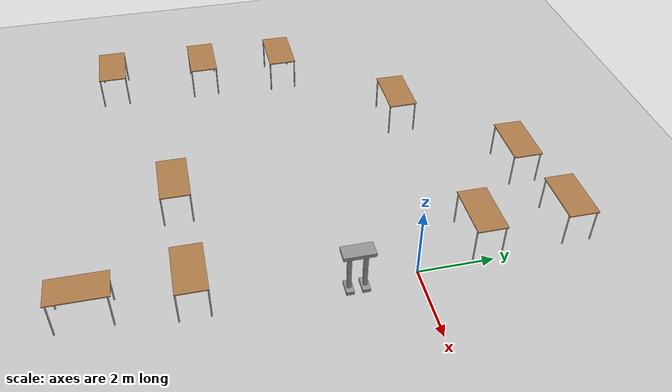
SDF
<sdf version="1.6">
 <world name="default">
  <model name="ground_plane">
   <static>1</static>
   <link name="link">
    <collision name="collision">
     <geometry><plane><normal>0 0 1</normal><size>100 100</size></plane></geometry>
     <surface><friction><ode><mu>100</mu><mu2>50</mu2></ode></friction></surface>
    </collision>
    <visual name="visual">
     <cast_shadows>0</cast_shadows>
     <geometry><plane><normal>0 0 1</normal><size>100 100</size></plane></geometry>
     <material>
      <script><uri>file://media/materials/scripts/gazebo.material</uri><name>Gazebo/Grey</name></script>
     </material>
    </visual>
   </link>
  </model>
  <model name="table_clone">
   <static>1</static>
   <link name="link">
    <collision name="surface">
     <pose>0 0 1 0 -0 0</pose>
     <geometry><box><size>1.5 0.8 0.03</size></box></geometry>
     <surface><friction><ode><mu>0.6</mu><mu2>0.6</mu2></ode></friction></surface>
    </collision>
    <visual name="visual1">
     <pose>0 0 1 0 -0 0</pose>
     <geometry><box><size>1.5 0.8 0.03</size></box></geometry>
     <material>
      <script><uri>file://media/materials/scripts/gazebo.material</uri><name>Gazebo/Wood</name></script>
     </material>
    </visual>
    <collision name="front_left_leg">
     <pose>0.68 0.38 0.5 0 -0 0</pose>
     <geometry><cylinder><radius>0.02</radius><length>1</length></cylinder></geometry>
    </collision>
    <visual name="front_left_leg">
     <pose>0.68 0.38 0.5 0 -0 0</pose>
     <geometry><cylinder><radius>0.02</radius><length>1</length></cylinder></geometry>
     <material>
      <script><uri>file://media/materials/scripts/gazebo.material</uri><name>Gazebo/Grey</name></script>
     </material>
    </visual>
    <collision name="front_right_leg">
     <pose>0.68 -0.38 0.5 0 -0 0</pose>
     <geometry><cylinder><radius>0.02</radius><length>1</length></cylinder></geometry>
    </collision>
    <visual name="front_right_leg">
     <pose>0.68 -0.38 0.5 0 -0 0</pose>
     <geometry><cylinder><radius>0.02</radius><length>1</length></cylinder></geometry>
     <material>
      <script><uri>file://media/materials/scripts/gazebo.material</uri><name>Gazebo/Grey</name></script>
     </material>
    </visual>
    <collision name="back_right_leg">
     <pose>-0.68 -0.38 0.5 0 -0 0</pose>
     <geometry><cylinder><radius>0.02</radius><length>1</length></cylinder></geometry>
    </collision>
    <visual name="back_right_leg">
     <pose>-0.68 -0.38 0.5 0 -0 0</pose>
     <geometry><cylinder><radius>0.02</radius><length>1</length></cylinder></geometry>
     <material>
      <script><uri>file://media/materials/scripts/gazebo.material</uri><name>Gazebo/Grey</name></script>
     </material>
    </visual>
    <collision name="back_left_leg">
     <pose>-0.68 0.38 0.5 0 -0 0</pose>
     <geometry><cylinder><radius>0.02</radius><length>1</length></cylinder></geometry>
    </collision>
    <visual name="back_left_leg">
     <pose>-0.68 0.38 0.5 0 -0 0</pose>
     <geometry><cylinder><radius>0.02</radius><length>1</length></cylinder></geometry>
     <material>
      <script><uri>file://media/materials/scripts/gazebo.material</uri><name>Gazebo/Grey</name></script>
     </material>
    </visual>
   </link>
   <pose>-0.811413 4.29214 0 0 -0 0</pose>
  </model>
  <model name="table_clone_1">
   <static>1</static>
   <link name="link">
    <collision name="surface">
     <pose>0 0 1 0 -0 0</pose>
     <geometry><box><size>1.5 0.8 0.03</size></box></geometry>
     <surface><friction><ode><mu>0.6</mu><mu2>0.6</mu2></ode></friction></surface>
    </collision>
    <visual name="visual1">
     <pose>0 0 1 0 -0 0</pose>
     <geometry><box><size>1.5 0.8 0.03</size></box></geometry>
     <material>
      <script><uri>file://media/materials/scripts/gazebo.material</uri><name>Gazebo/Wood</name></script>
     </material>
    </visual>
    <collision name="front_left_leg">
     <pose>0.68 0.38 0.5 0 -0 0</pose>
     <geometry><cylinder><radius>0.02</radius><length>1</length></cylinder></geometry>
    </collision>
    <visual name="front_left_leg">
     <pose>0.68 0.38 0.5 0 -0 0</pose>
     <geometry><cylinder><radius>0.02</radius><length>1</length></cylinder></geometry>
     <material>
      <script><uri>file://media/materials/scripts/gazebo.material</uri><name>Gazebo/Grey</name></script>
     </material>
    </visual>
    <collision name="front_right_leg">
     <pose>0.68 -0.38 0.5 0 -0 0</pose>
     <geometry><cylinder><radius>0.02</radius><length>1</length></cylinder></geometry>
    </collision>
    <visual name="front_right_leg">
     <pose>0.68 -0.38 0.5 0 -0 0</pose>
     <geometry><cylinder><radius>0.02</radius><length>1</length></cylinder></geometry>
     <material>
      <script><uri>file://media/materials/scripts/gazebo.material</uri><name>Gazebo/Grey</name></script>
     </material>
    </visual>
    <collision name="back_right_leg">
     <pose>-0.68 -0.38 0.5 0 -0 0</pose>
     <geometry><cylinder><radius>0.02</radius><length>1</length></cylinder></geometry>
    </collision>
    <visual name="back_right_leg">
     <pose>-0.68 -0.38 0.5 0 -0 0</pose>
     <geometry><cylinder><radius>0.02</radius><length>1</length></cylinder></geometry>
     <material>
      <script><uri>file://media/materials/scripts/gazebo.material</uri><name>Gazebo/Grey</name></script>
     </material>
    </visual>
    <collision name="back_left_leg">
     <pose>-0.68 0.38 0.5 0 -0 0</pose>
     <geometry><cylinder><radius>0.02</radius><length>1</length></cylinder></geometry>
    </collision>
    <visual name="back_left_leg">
     <pose>-0.68 0.38 0.5 0 -0 0</pose>
     <geometry><cylinder><radius>0.02</radius><length>1</length></cylinder></geometry>
     <material>
      <script><uri>file://media/materials/scripts/gazebo.material</uri><name>Gazebo/Grey</name></script>
     </material>
    </visual>
   </link>
   <pose>-0.787841 1.87197 0 0 -0 0</pose>
  </model>
  <model name="table_clone_4">
   <static>1</static>
   <link name="link">
    <collision name="surface">
     <pose>0 0 1 0 -0 0</pose>
     <geometry><box><size>1.5 0.8 0.03</size></box></geometry>
     <surface><friction><ode><mu>0.6</mu><mu2>0.6</mu2></ode></friction></surface>
    </collision>
    <visual name="visual1">
     <pose>0 0 1 0 -0 0</pose>
     <geometry><box><size>1.5 0.8 0.03</size></box></geometry>
     <material>
      <script><uri>file://media/materials/scripts/gazebo.material</uri><name>Gazebo/Wood</name></script>
     </material>
    </visual>
    <collision name="front_left_leg">
     <pose>0.68 0.38 0.5 0 -0 0</pose>
     <geometry><cylinder><radius>0.02</radius><length>1</length></cylinder></geometry>
    </collision>
    <visual name="front_left_leg">
     <pose>0.68 0.38 0.5 0 -0 0</pose>
     <geometry><cylinder><radius>0.02</radius><length>1</length></cylinder></geometry>
     <material>
      <script><uri>file://media/materials/scripts/gazebo.material</uri><name>Gazebo/Grey</name></script>
     </material>
    </visual>
    <collision name="front_right_leg">
     <pose>0.68 -0.38 0.5 0 -0 0</pose>
     <geometry><cylinder><radius>0.02</radius><length>1</length></cylinder></geometry>
    </collision>
    <visual name="front_right_leg">
     <pose>0.68 -0.38 0.5 0 -0 0</pose>
     <geometry><cylinder><radius>0.02</radius><length>1</length></cylinder></geometry>
     <material>
      <script><uri>file://media/materials/scripts/gazebo.material</uri><name>Gazebo/Grey</name></script>
     </material>
    </visual>
    <collision name="back_right_leg">
     <pose>-0.68 -0.38 0.5 0 -0 0</pose>
     <geometry><cylinder><radius>0.02</radius><length>1</length></cylinder></geometry>
    </collision>
    <visual name="back_right_leg">
     <pose>-0.68 -0.38 0.5 0 -0 0</pose>
     <geometry><cylinder><radius>0.02</radius><length>1</length></cylinder></geometry>
     <material>
      <script><uri>file://media/materials/scripts/gazebo.material</uri><name>Gazebo/Grey</name></script>
     </material>
    </visual>
    <collision name="back_left_leg">
     <pose>-0.68 0.38 0.5 0 -0 0</pose>
     <geometry><cylinder><radius>0.02</radius><length>1</length></cylinder></geometry>
    </collision>
    <visual name="back_left_leg">
     <pose>-0.68 0.38 0.5 0 -0 0</pose>
     <geometry><cylinder><radius>0.02</radius><length>1</length></cylinder></geometry>
     <material>
      <script><uri>file://media/materials/scripts/gazebo.material</uri><name>Gazebo/Grey</name></script>
     </material>
    </visual>
   </link>
   <pose>-3.23824 3.87972 0 0 -0 0</pose>
  </model>
  <model name="table_clone_5">
   <static>1</static>
   <link name="link">
    <collision name="surface">
     <pose>0 0 1 0 -0 0</pose>
     <geometry><box><size>1.5 0.8 0.03</size></box></geometry>
     <surface><friction><ode><mu>0.6</mu><mu2>0.6</mu2></ode></friction></surface>
    </collision>
    <visual name="visual1">
     <pose>0 0 1 0 -0 0</pose>
     <geometry><box><size>1.5 0.8 0.03</size></box></geometry>
     <material>
      <script><uri>file://media/materials/scripts/gazebo.material</uri><name>Gazebo/Wood</name></script>
     </material>
    </visual>
    <collision name="front_left_leg">
     <pose>0.68 0.38 0.5 0 -0 0</pose>
     <geometry><cylinder><radius>0.02</radius><length>1</length></cylinder></geometry>
    </collision>
    <visual name="front_left_leg">
     <pose>0.68 0.38 0.5 0 -0 0</pose>
     <geometry><cylinder><radius>0.02</radius><length>1</length></cylinder></geometry>
     <material>
      <script><uri>file://media/materials/scripts/gazebo.material</uri><name>Gazebo/Grey</name></script>
     </material>
    </visual>
    <collision name="front_right_leg">
     <pose>0.68 -0.38 0.5 0 -0 0</pose>
     <geometry><cylinder><radius>0.02</radius><length>1</length></cylinder></geometry>
    </collision>
    <visual name="front_right_leg">
     <pose>0.68 -0.38 0.5 0 -0 0</pose>
     <geometry><cylinder><radius>0.02</radius><length>1</length></cylinder></geometry>
     <material>
      <script><uri>file://media/materials/scripts/gazebo.material</uri><name>Gazebo/Grey</name></script>
     </material>
    </visual>
    <collision name="back_right_leg">
     <pose>-0.68 -0.38 0.5 0 -0 0</pose>
     <geometry><cylinder><radius>0.02</radius><length>1</length></cylinder></geometry>
    </collision>
    <visual name="back_right_leg">
     <pose>-0.68 -0.38 0.5 0 -0 0</pose>
     <geometry><cylinder><radius>0.02</radius><length>1</length></cylinder></geometry>
     <material>
      <script><uri>file://media/materials/scripts/gazebo.material</uri><name>Gazebo/Grey</name></script>
     </material>
    </visual>
    <collision name="back_left_leg">
     <pose>-0.68 0.38 0.5 0 -0 0</pose>
     <geometry><cylinder><radius>0.02</radius><length>1</length></cylinder></geometry>
    </collision>
    <visual name="back_left_leg">
     <pose>-0.68 0.38 0.5 0 -0 0</pose>
     <geometry><cylinder><radius>0.02</radius><length>1</length></cylinder></geometry>
     <material>
      <script><uri>file://media/materials/scripts/gazebo.material</uri><name>Gazebo/Grey</name></script>
     </material>
    </visual>
   </link>
   <pose>-6.18665 1.26088 0 0 -0 0</pose>
  </model>
  <model name="table_clone_6">
   <static>1</static>
   <link name="link">
    <collision name="surface">
     <pose>0 0 1 0 -0 0</pose>
     <geometry><box><size>1.5 0.8 0.03</size></box></geometry>
     <surface><friction><ode><mu>0.6</mu><mu2>0.6</mu2></ode></friction></surface>
    </collision>
    <visual name="visual1">
     <pose>0 0 1 0 -0 0</pose>
     <geometry><box><size>1.5 0.8 0.03</size></box></geometry>
     <material>
      <script><uri>file://media/materials/scripts/gazebo.material</uri><name>Gazebo/Wood</name></script>
     </material>
    </visual>
    <collision name="front_left_leg">
     <pose>0.68 0.38 0.5 0 -0 0</pose>
     <geometry><cylinder><radius>0.02</radius><length>1</length></cylinder></geometry>
    </collision>
    <visual name="front_left_leg">
     <pose>0.68 0.38 0.5 0 -0 0</pose>
     <geometry><cylinder><radius>0.02</radius><length>1</length></cylinder></geometry>
     <material>
      <script><uri>file://media/materials/scripts/gazebo.material</uri><name>Gazebo/Grey</name></script>
     </material>
    </visual>
    <collision name="front_right_leg">
     <pose>0.68 -0.38 0.5 0 -0 0</pose>
     <geometry><cylinder><radius>0.02</radius><length>1</length></cylinder></geometry>
    </collision>
    <visual name="front_right_leg">
     <pose>0.68 -0.38 0.5 0 -0 0</pose>
     <geometry><cylinder><radius>0.02</radius><length>1</length></cylinder></geometry>
     <material>
      <script><uri>file://media/materials/scripts/gazebo.material</uri><name>Gazebo/Grey</name></script>
     </material>
    </visual>
    <collision name="back_right_leg">
     <pose>-0.68 -0.38 0.5 0 -0 0</pose>
     <geometry><cylinder><radius>0.02</radius><length>1</length></cylinder></geometry>
    </collision>
    <visual name="back_right_leg">
     <pose>-0.68 -0.38 0.5 0 -0 0</pose>
     <geometry><cylinder><radius>0.02</radius><length>1</length></cylinder></geometry>
     <material>
      <script><uri>file://media/materials/scripts/gazebo.material</uri><name>Gazebo/Grey</name></script>
     </material>
    </visual>
    <collision name="back_left_leg">
     <pose>-0.68 0.38 0.5 0 -0 0</pose>
     <geometry><cylinder><radius>0.02</radius><length>1</length></cylinder></geometry>
    </collision>
    <visual name="back_left_leg">
     <pose>-0.68 0.38 0.5 0 -0 0</pose>
     <geometry><cylinder><radius>0.02</radius><length>1</length></cylinder></geometry>
     <material>
      <script><uri>file://media/materials/scripts/gazebo.material</uri><name>Gazebo/Grey</name></script>
     </material>
    </visual>
   </link>
   <pose>-9.1787 -1.7879 0 0 -0 0</pose>
  </model>
  <model name="table_clone_7">
   <static>1</static>
   <link name="link">
    <collision name="surface">
     <pose>0 0 1 0 -0 0</pose>
     <geometry><box><size>1.5 0.8 0.03</size></box></geometry>
     <surface><friction><ode><mu>0.6</mu><mu2>0.6</mu2></ode></friction></surface>
    </collision>
    <visual name="visual1">
     <pose>0 0 1 0 -0 0</pose>
     <geometry><box><size>1.5 0.8 0.03</size></box></geometry>
     <material>
      <script><uri>file://media/materials/scripts/gazebo.material</uri><name>Gazebo/Wood</name></script>
     </material>
    </visual>
    <collision name="front_left_leg">
     <pose>0.68 0.38 0.5 0 -0 0</pose>
     <geometry><cylinder><radius>0.02</radius><length>1</length></cylinder></geometry>
    </collision>
    <visual name="front_left_leg">
     <pose>0.68 0.38 0.5 0 -0 0</pose>
     <geometry><cylinder><radius>0.02</radius><length>1</length></cylinder></geometry>
     <material>
      <script><uri>file://media/materials/scripts/gazebo.material</uri><name>Gazebo/Grey</name></script>
     </material>
    </visual>
    <collision name="front_right_leg">
     <pose>0.68 -0.38 0.5 0 -0 0</pose>
     <geometry><cylinder><radius>0.02</radius><length>1</length></cylinder></geometry>
    </collision>
    <visual name="front_right_leg">
     <pose>0.68 -0.38 0.5 0 -0 0</pose>
     <geometry><cylinder><radius>0.02</radius><length>1</length></cylinder></geometry>
     <material>
      <script><uri>file://media/materials/scripts/gazebo.material</uri><name>Gazebo/Grey</name></script>
     </material>
    </visual>
    <collision name="back_right_leg">
     <pose>-0.68 -0.38 0.5 0 -0 0</pose>
     <geometry><cylinder><radius>0.02</radius><length>1</length></cylinder></geometry>
    </collision>
    <visual name="back_right_leg">
     <pose>-0.68 -0.38 0.5 0 -0 0</pose>
     <geometry><cylinder><radius>0.02</radius><length>1</length></cylinder></geometry>
     <material>
      <script><uri>file://media/materials/scripts/gazebo.material</uri><name>Gazebo/Grey</name></script>
     </material>
    </visual>
    <collision name="back_left_leg">
     <pose>-0.68 0.38 0.5 0 -0 0</pose>
     <geometry><cylinder><radius>0.02</radius><length>1</length></cylinder></geometry>
    </collision>
    <visual name="back_left_leg">
     <pose>-0.68 0.38 0.5 0 -0 0</pose>
     <geometry><cylinder><radius>0.02</radius><length>1</length></cylinder></geometry>
     <material>
      <script><uri>file://media/materials/scripts/gazebo.material</uri><name>Gazebo/Grey</name></script>
     </material>
    </visual>
   </link>
   <pose>-9.29597 -4.24343 0 0 -0 0</pose>
  </model>
  <model name="table_clone_8">
   <static>1</static>
   <link name="link">
    <collision name="surface">
     <pose>0 0 1 0 -0 0</pose>
     <geometry><box><size>1.5 0.8 0.03</size></box></geometry>
     <surface><friction><ode><mu>0.6</mu><mu2>0.6</mu2></ode></friction></surface>
    </collision>
    <visual name="visual1">
     <pose>0 0 1 0 -0 0</pose>
     <geometry><box><size>1.5 0.8 0.03</size></box></geometry>
     <material>
      <script><uri>file://media/materials/scripts/gazebo.material</uri><name>Gazebo/Wood</name></script>
     </material>
    </visual>
    <collision name="front_left_leg">
     <pose>0.68 0.38 0.5 0 -0 0</pose>
     <geometry><cylinder><radius>0.02</radius><length>1</length></cylinder></geometry>
    </collision>
    <visual name="front_left_leg">
     <pose>0.68 0.38 0.5 0 -0 0</pose>
     <geometry><cylinder><radius>0.02</radius><length>1</length></cylinder></geometry>
     <material>
      <script><uri>file://media/materials/scripts/gazebo.material</uri><name>Gazebo/Grey</name></script>
     </material>
    </visual>
    <collision name="front_right_leg">
     <pose>0.68 -0.38 0.5 0 -0 0</pose>
     <geometry><cylinder><radius>0.02</radius><length>1</length></cylinder></geometry>
    </collision>
    <visual name="front_right_leg">
     <pose>0.68 -0.38 0.5 0 -0 0</pose>
     <geometry><cylinder><radius>0.02</radius><length>1</length></cylinder></geometry>
     <material>
      <script><uri>file://media/materials/scripts/gazebo.material</uri><name>Gazebo/Grey</name></script>
     </material>
    </visual>
    <collision name="back_right_leg">
     <pose>-0.68 -0.38 0.5 0 -0 0</pose>
     <geometry><cylinder><radius>0.02</radius><length>1</length></cylinder></geometry>
    </collision>
    <visual name="back_right_leg">
     <pose>-0.68 -0.38 0.5 0 -0 0</pose>
     <geometry><cylinder><radius>0.02</radius><length>1</length></cylinder></geometry>
     <material>
      <script><uri>file://media/materials/scripts/gazebo.material</uri><name>Gazebo/Grey</name></script>
     </material>
    </visual>
    <collision name="back_left_leg">
     <pose>-0.68 0.38 0.5 0 -0 0</pose>
     <geometry><cylinder><radius>0.02</radius><length>1</length></cylinder></geometry>
    </collision>
    <visual name="back_left_leg">
     <pose>-0.68 0.38 0.5 0 -0 0</pose>
     <geometry><cylinder><radius>0.02</radius><length>1</length></cylinder></geometry>
     <material>
      <script><uri>file://media/materials/scripts/gazebo.material</uri><name>Gazebo/Grey</name></script>
     </material>
    </visual>
   </link>
   <pose>-9.3581 -7.0284 0 0 -0 0</pose>
  </model>
  <model name="table_clone_9">
   <static>1</static>
   <link name="link">
    <collision name="surface">
     <pose>0 0 1 0 -0 0</pose>
     <geometry><box><size>1.5 0.8 0.03</size></box></geometry>
     <surface><friction><ode><mu>0.6</mu><mu2>0.6</mu2></ode></friction></surface>
    </collision>
    <visual name="visual1">
     <pose>0 0 1 0 -0 0</pose>
     <geometry><box><size>1.5 0.8 0.03</size></box></geometry>
     <material>
      <script><uri>file://media/materials/scripts/gazebo.material</uri><name>Gazebo/Wood</name></script>
     </material>
    </visual>
    <collision name="front_left_leg">
     <pose>0.68 0.38 0.5 0 -0 0</pose>
     <geometry><cylinder><radius>0.02</radius><length>1</length></cylinder></geometry>
    </collision>
    <visual name="front_left_leg">
     <pose>0.68 0.38 0.5 0 -0 0</pose>
     <geometry><cylinder><radius>0.02</radius><length>1</length></cylinder></geometry>
     <material>
      <script><uri>file://media/materials/scripts/gazebo.material</uri><name>Gazebo/Grey</name></script>
     </material>
    </visual>
    <collision name="front_right_leg">
     <pose>0.68 -0.38 0.5 0 -0 0</pose>
     <geometry><cylinder><radius>0.02</radius><length>1</length></cylinder></geometry>
    </collision>
    <visual name="front_right_leg">
     <pose>0.68 -0.38 0.5 0 -0 0</pose>
     <geometry><cylinder><radius>0.02</radius><length>1</length></cylinder></geometry>
     <material>
      <script><uri>file://media/materials/scripts/gazebo.material</uri><name>Gazebo/Grey</name></script>
     </material>
    </visual>
    <collision name="back_right_leg">
     <pose>-0.68 -0.38 0.5 0 -0 0</pose>
     <geometry><cylinder><radius>0.02</radius><length>1</length></cylinder></geometry>
    </collision>
    <visual name="back_right_leg">
     <pose>-0.68 -0.38 0.5 0 -0 0</pose>
     <geometry><cylinder><radius>0.02</radius><length>1</length></cylinder></geometry>
     <material>
      <script><uri>file://media/materials/scripts/gazebo.material</uri><name>Gazebo/Grey</name></script>
     </material>
    </visual>
    <collision name="back_left_leg">
     <pose>-0.68 0.38 0.5 0 -0 0</pose>
     <geometry><cylinder><radius>0.02</radius><length>1</length></cylinder></geometry>
    </collision>
    <visual name="back_left_leg">
     <pose>-0.68 0.38 0.5 0 -0 0</pose>
     <geometry><cylinder><radius>0.02</radius><length>1</length></cylinder></geometry>
     <material>
      <script><uri>file://media/materials/scripts/gazebo.material</uri><name>Gazebo/Grey</name></script>
     </material>
    </visual>
   </link>
   <pose>-3.65224 -5.57923 0 0 -0 0</pose>
  </model>
  <model name="table_clone_10">
   <static>1</static>
   <link name="link">
    <collision name="surface">
     <pose>0 0 1 0 -0 0</pose>
     <geometry><box><size>1.5 0.8 0.03</size></box></geometry>
     <surface><friction><ode><mu>0.6</mu><mu2>0.6</mu2></ode></friction></surface>
    </collision>
    <visual name="visual1">
     <pose>0 0 1 0 -0 0</pose>
     <geometry><box><size>1.5 0.8 0.03</size></box></geometry>
     <material>
      <script><uri>file://media/materials/scripts/gazebo.material</uri><name>Gazebo/Wood</name></script>
     </material>
    </visual>
    <collision name="front_left_leg">
     <pose>0.68 0.38 0.5 0 -0 0</pose>
     <geometry><cylinder><radius>0.02</radius><length>1</length></cylinder></geometry>
    </collision>
    <visual name="front_left_leg">
     <pose>0.68 0.38 0.5 0 -0 0</pose>
     <geometry><cylinder><radius>0.02</radius><length>1</length></cylinder></geometry>
     <material>
      <script><uri>file://media/materials/scripts/gazebo.material</uri><name>Gazebo/Grey</name></script>
     </material>
    </visual>
    <collision name="front_right_leg">
     <pose>0.68 -0.38 0.5 0 -0 0</pose>
     <geometry><cylinder><radius>0.02</radius><length>1</length></cylinder></geometry>
    </collision>
    <visual name="front_right_leg">
     <pose>0.68 -0.38 0.5 0 -0 0</pose>
     <geometry><cylinder><radius>0.02</radius><length>1</length></cylinder></geometry>
     <material>
      <script><uri>file://media/materials/scripts/gazebo.material</uri><name>Gazebo/Grey</name></script>
     </material>
    </visual>
    <collision name="back_right_leg">
     <pose>-0.68 -0.38 0.5 0 -0 0</pose>
     <geometry><cylinder><radius>0.02</radius><length>1</length></cylinder></geometry>
    </collision>
    <visual name="back_right_leg">
     <pose>-0.68 -0.38 0.5 0 -0 0</pose>
     <geometry><cylinder><radius>0.02</radius><length>1</length></cylinder></geometry>
     <material>
      <script><uri>file://media/materials/scripts/gazebo.material</uri><name>Gazebo/Grey</name></script>
     </material>
    </visual>
    <collision name="back_left_leg">
     <pose>-0.68 0.38 0.5 0 -0 0</pose>
     <geometry><cylinder><radius>0.02</radius><length>1</length></cylinder></geometry>
    </collision>
    <visual name="back_left_leg">
     <pose>-0.68 0.38 0.5 0 -0 0</pose>
     <geometry><cylinder><radius>0.02</radius><length>1</length></cylinder></geometry>
     <material>
      <script><uri>file://media/materials/scripts/gazebo.material</uri><name>Gazebo/Grey</name></script>
     </material>
    </visual>
   </link>
   <pose>-0.409166 -5.47098 0 0 -0 0</pose>
  </model>
  <model name="table_clone_17_clone">
   <static>1</static>
   <link name="link">
    <collision name="surface">
     <pose>0 0 1 0 -0 0</pose>
     <geometry><box><size>1.5 0.8 0.03</size></box></geometry>
     <surface><friction><ode><mu>0.6</mu><mu2>0.6</mu2></ode></friction></surface>
    </collision>
    <visual name="visual1">
     <pose>0 0 1 0 -0 0</pose>
     <geometry><box><size>1.5 0.8 0.03</size></box></geometry>
     <material>
      <script><uri>file://media/materials/scripts/gazebo.material</uri><name>Gazebo/Wood</name></script>
     </material>
    </visual>
    <collision name="front_left_leg">
     <pose>0.68 0.38 0.5 0 -0 0</pose>
     <geometry><cylinder><radius>0.02</radius><length>1</length></cylinder></geometry>
    </collision>
    <visual name="front_left_leg">
     <pose>0.68 0.38 0.5 0 -0 0</pose>
     <geometry><cylinder><radius>0.02</radius><length>1</length></cylinder></geometry>
     <material>
      <script><uri>file://media/materials/scripts/gazebo.material</uri><name>Gazebo/Grey</name></script>
     </material>
    </visual>
    <collision name="front_right_leg">
     <pose>0.68 -0.38 0.5 0 -0 0</pose>
     <geometry><cylinder><radius>0.02</radius><length>1</length></cylinder></geometry>
    </collision>
    <visual name="front_right_leg">
     <pose>0.68 -0.38 0.5 0 -0 0</pose>
     <geometry><cylinder><radius>0.02</radius><length>1</length></cylinder></geometry>
     <material>
      <script><uri>file://media/materials/scripts/gazebo.material</uri><name>Gazebo/Grey</name></script>
     </material>
    </visual>
    <collision name="back_right_leg">
     <pose>-0.68 -0.38 0.5 0 -0 0</pose>
     <geometry><cylinder><radius>0.02</radius><length>1</length></cylinder></geometry>
    </collision>
    <visual name="back_right_leg">
     <pose>-0.68 -0.38 0.5 0 -0 0</pose>
     <geometry><cylinder><radius>0.02</radius><length>1</length></cylinder></geometry>
     <material>
      <script><uri>file://media/materials/scripts/gazebo.material</uri><name>Gazebo/Grey</name></script>
     </material>
    </visual>
    <collision name="back_left_leg">
     <pose>-0.68 0.38 0.5 0 -0 0</pose>
     <geometry><cylinder><radius>0.02</radius><length>1</length></cylinder></geometry>
    </collision>
    <visual name="back_left_leg">
     <pose>-0.68 0.38 0.5 0 -0 0</pose>
     <geometry><cylinder><radius>0.02</radius><length>1</length></cylinder></geometry>
     <material>
      <script><uri>file://media/materials/scripts/gazebo.material</uri><name>Gazebo/Grey</name></script>
     </material>
    </visual>
   </link>
   <pose>-0.346366 -7.98407 0 0 -0 1.56617</pose>
  </model>
  <model name="HumanoidRobot_clone">
   <link name="link_0">
    <inertial>
     <mass>1</mass>
     <inertia>
      <ixx>0.166667</ixx>
      <ixy>0</ixy>
      <ixz>0</ixz>
      <iyy>0.166667</iyy>
      <iyz>0</iyz>
      <izz>0.166667</izz>
     </inertia>
    </inertial>
    <pose>0 0 1.2 0 -0 0</pose>
    <visual name="visual">
     <geometry><box><size>0.4 0.8 0.1</size></box></geometry>
     <material>
      <lighting>1</lighting>
      <script><uri>file://media/materials/scripts/gazebo.material</uri><name>Gazebo/Grey</name></script>
      <shader type="vertex"><normal_map>__default__</normal_map></shader>
      <ambient>0.3 0.3 0.3 1</ambient>
      <diffuse>0.7 0.7 0.7 1</diffuse>
      <specular>0.01 0.01 0.01 1</specular>
      <emissive>0 0 0 1</emissive>
     </material>
    </visual>
    <collision name="collision">
     <geometry><box><size>0.4 0.8 0.1</size></box></geometry>
     <surface>
      <friction>
       <ode><mu>1</mu><mu2>1</mu2><fdir1>0 0 0</fdir1><slip1>0</slip1><slip2>0</slip2></ode>
       <torsional>
        <coefficient>1</coefficient>
        <patch_radius>0</patch_radius>
        <surface_radius>0</surface_radius>
        <use_patch_radius>1</use_patch_radius>
        <ode><slip>0</slip></ode>
       </torsional>
      </friction>
      <bounce><restitution_coefficient>0</restitution_coefficient><threshold>1e+06</threshold></bounce>
      <contact>
       <collide_without_contact>0</collide_without_contact>
       <collide_without_contact_bitmask>1</collide_without_contact_bitmask>
       <collide_bitmask>1</collide_bitmask>
       <ode>
        <soft_cfm>0</soft_cfm>
        <soft_erp>0.2</soft_erp>
        <kp>1e+13</kp>
        <kd>1</kd>
        <max_vel>0.01</max_vel>
        <min_depth>0</min_depth>
       </ode>
       <bullet>
        <split_impulse>1</split_impulse>
        <split_impulse_penetration_threshold>-0.01</split_impulse_penetration_threshold>
        <soft_cfm>0</soft_cfm>
        <soft_erp>0.2</soft_erp>
        <kp>1e+13</kp>
        <kd>1</kd>
       </bullet>
      </contact>
     </surface>
    </collision>
   </link>
   <link name="link_0_clone">
    <inertial>
     <mass>1</mass>
     <inertia>
      <ixx>0.166667</ixx>
      <ixy>0</ixy>
      <ixz>0</ixz>
      <iyy>0.166667</iyy>
      <iyz>0</iyz>
      <izz>0.166667</izz>
     </inertia>
    </inertial>
    <pose>0 0.2 0 0 -0 0</pose>
    <visual name="visual">
     <geometry><box><size>0.4 0.2 0.1</size></box></geometry>
     <material>
      <lighting>1</lighting>
      <script><uri>file://media/materials/scripts/gazebo.material</uri><name>Gazebo/Grey</name></script>
      <shader type="vertex"><normal_map>__default__</normal_map></shader>
      <ambient>0.3 0.3 0.3 1</ambient>
      <diffuse>0.7 0.7 0.7 1</diffuse>
      <specular>0.01 0.01 0.01 1</specular>
      <emissive>0 0 0 1</emissive>
     </material>
    </visual>
    <collision name="collision">
     <geometry><box><size>0.4 0.2 0.1</size></box></geometry>
     <surface>
      <friction>
       <ode><mu>1</mu><mu2>1</mu2><fdir1>0 0 0</fdir1><slip1>0</slip1><slip2>0</slip2></ode>
       <torsional>
        <coefficient>1</coefficient>
        <patch_radius>0</patch_radius>
        <surface_radius>0</surface_radius>
        <use_patch_radius>1</use_patch_radius>
        <ode><slip>0</slip></ode>
       </torsional>
      </friction>
      <bounce><restitution_coefficient>0</restitution_coefficient><threshold>1e+06</threshold></bounce>
      <contact>
       <collide_without_contact>0</collide_without_contact>
       <collide_without_contact_bitmask>1</collide_without_contact_bitmask>
       <collide_bitmask>1</collide_bitmask>
       <ode>
        <soft_cfm>0</soft_cfm>
        <soft_erp>0.2</soft_erp>
        <kp>1e+13</kp>
        <kd>1</kd>
        <max_vel>0.01</max_vel>
        <min_depth>0</min_depth>
       </ode>
       <bullet>
        <split_impulse>1</split_impulse>
        <split_impulse_penetration_threshold>-0.01</split_impulse_penetration_threshold>
        <soft_cfm>0</soft_cfm>
        <soft_erp>0.2</soft_erp>
        <kp>1e+13</kp>
        <kd>1</kd>
       </bullet>
      </contact>
     </surface>
    </collision>
   </link>
   <link name="link_0_clone_clone">
    <inertial>
     <mass>1</mass>
     <inertia>
      <ixx>0.166667</ixx>
      <ixy>0</ixy>
      <ixz>0</ixz>
      <iyy>0.166667</iyy>
      <iyz>0</iyz>
      <izz>0.166667</izz>
     </inertia>
    </inertial>
    <pose>0 -0.2 0 0 -0 0</pose>
    <visual name="visual">
     <geometry><box><size>0.4 0.2 0.1</size></box></geometry>
     <material>
      <lighting>1</lighting>
      <script><uri>file://media/materials/scripts/gazebo.material</uri><name>Gazebo/Grey</name></script>
      <shader type="vertex"><normal_map>__default__</normal_map></shader>
      <ambient>0.3 0.3 0.3 1</ambient>
      <diffuse>0.7 0.7 0.7 1</diffuse>
      <specular>0.01 0.01 0.01 1</specular>
      <emissive>0 0 0 1</emissive>
     </material>
    </visual>
    <collision name="collision">
     <geometry><box><size>0.4 0.2 0.1</size></box></geometry>
     <surface>
      <friction>
       <ode><mu>1</mu><mu2>1</mu2><fdir1>0 0 0</fdir1><slip1>0</slip1><slip2>0</slip2></ode>
       <torsional>
        <coefficient>1</coefficient>
        <patch_radius>0</patch_radius>
        <surface_radius>0</surface_radius>
        <use_patch_radius>1</use_patch_radius>
        <ode><slip>0</slip></ode>
       </torsional>
      </friction>
      <bounce><restitution_coefficient>0</restitution_coefficient><threshold>1e+06</threshold></bounce>
      <contact>
       <collide_without_contact>0</collide_without_contact>
       <collide_without_contact_bitmask>1</collide_without_contact_bitmask>
       <collide_bitmask>1</collide_bitmask>
       <ode>
        <soft_cfm>0</soft_cfm>
        <soft_erp>0.2</soft_erp>
        <kp>1e+13</kp>
        <kd>1</kd>
        <max_vel>0.01</max_vel>
        <min_depth>0</min_depth>
       </ode>
       <bullet>
        <split_impulse>1</split_impulse>
        <split_impulse_penetration_threshold>-0.01</split_impulse_penetration_threshold>
        <soft_cfm>0</soft_cfm>
        <soft_erp>0.2</soft_erp>
        <kp>1e+13</kp>
        <kd>1</kd>
       </bullet>
      </contact>
     </surface>
    </collision>
   </link>
   <link name="link_1">
    <inertial>
     <mass>1</mass>
     <inertia>
      <ixx>0.166667</ixx>
      <ixy>0</ixy>
      <ixz>0</ixz>
      <iyy>0.166667</iyy>
      <iyz>0</iyz>
      <izz>0.166667</izz>
     </inertia>
    </inertial>
    <pose>0 0.2 0.86 0 0.05 0</pose>
    <visual name="visual">
     <geometry><box><size>0.1 0.1 0.6</size></box></geometry>
     <material>
      <lighting>1</lighting>
      <script><uri>file://media/materials/scripts/gazebo.material</uri><name>Gazebo/Grey</name></script>
      <shader type="vertex"><normal_map>__default__</normal_map></shader>
      <ambient>0.3 0.3 0.3 1</ambient>
      <diffuse>0.7 0.7 0.7 1</diffuse>
      <specular>0.01 0.01 0.01 1</specular>
      <emissive>0 0 0 1</emissive>
     </material>
    </visual>
    <collision name="collision">
     <geometry><box><size>0.1 0.1 0.6</size></box></geometry>
     <surface>
      <friction>
       <ode><mu>1</mu><mu2>1</mu2><fdir1>0 0 0</fdir1><slip1>0</slip1><slip2>0</slip2></ode>
       <torsional>
        <coefficient>1</coefficient>
        <patch_radius>0</patch_radius>
        <surface_radius>0</surface_radius>
        <use_patch_radius>1</use_patch_radius>
        <ode><slip>0</slip></ode>
       </torsional>
      </friction>
      <bounce><restitution_coefficient>0</restitution_coefficient><threshold>1e+06</threshold></bounce>
      <contact>
       <collide_without_contact>0</collide_without_contact>
       <collide_without_contact_bitmask>1</collide_without_contact_bitmask>
       <collide_bitmask>1</collide_bitmask>
       <ode>
        <soft_cfm>0</soft_cfm>
        <soft_erp>0.2</soft_erp>
        <kp>1e+13</kp>
        <kd>1</kd>
        <max_vel>0.01</max_vel>
        <min_depth>0</min_depth>
       </ode>
       <bullet>
        <split_impulse>1</split_impulse>
        <split_impulse_penetration_threshold>-0.01</split_impulse_penetration_threshold>
        <soft_cfm>0</soft_cfm>
        <soft_erp>0.2</soft_erp>
        <kp>1e+13</kp>
        <kd>1</kd>
       </bullet>
      </contact>
     </surface>
    </collision>
   </link>
   <link name="link_1_clone">
    <inertial>
     <mass>1</mass>
     <inertia>
      <ixx>0.166667</ixx>
      <ixy>0</ixy>
      <ixz>0</ixz>
      <iyy>0.166667</iyy>
      <iyz>0</iyz>
      <izz>0.166667</izz>
     </inertia>
    </inertial>
    <pose>0 -0.2 0.86 0 0.05 0</pose>
    <visual name="visual">
     <geometry><box><size>0.1 0.1 0.6</size></box></geometry>
     <material>
      <lighting>1</lighting>
      <script><uri>file://media/materials/scripts/gazebo.material</uri><name>Gazebo/Grey</name></script>
      <shader type="vertex"><normal_map>__default__</normal_map></shader>
      <ambient>0.3 0.3 0.3 1</ambient>
      <diffuse>0.7 0.7 0.7 1</diffuse>
      <specular>0.01 0.01 0.01 1</specular>
      <emissive>0 0 0 1</emissive>
     </material>
    </visual>
    <collision name="collision">
     <geometry><box><size>0.1 0.1 0.6</size></box></geometry>
     <surface>
      <friction>
       <ode><mu>1</mu><mu2>1</mu2><fdir1>0 0 0</fdir1><slip1>0</slip1><slip2>0</slip2></ode>
       <torsional>
        <coefficient>1</coefficient>
        <patch_radius>0</patch_radius>
        <surface_radius>0</surface_radius>
        <use_patch_radius>1</use_patch_radius>
        <ode><slip>0</slip></ode>
       </torsional>
      </friction>
      <bounce><restitution_coefficient>0</restitution_coefficient><threshold>1e+06</threshold></bounce>
      <contact>
       <collide_without_contact>0</collide_without_contact>
       <collide_without_contact_bitmask>1</collide_without_contact_bitmask>
       <collide_bitmask>1</collide_bitmask>
       <ode>
        <soft_cfm>0</soft_cfm>
        <soft_erp>0.2</soft_erp>
        <kp>1e+13</kp>
        <kd>1</kd>
        <max_vel>0.01</max_vel>
        <min_depth>0</min_depth>
       </ode>
       <bullet>
        <split_impulse>1</split_impulse>
        <split_impulse_penetration_threshold>-0.01</split_impulse_penetration_threshold>
        <soft_cfm>0</soft_cfm>
        <soft_erp>0.2</soft_erp>
        <kp>1e+13</kp>
        <kd>1</kd>
       </bullet>
      </contact>
     </surface>
    </collision>
   </link>
   <link name="link_1_clone_0">
    <inertial>
     <mass>1</mass>
     <inertia>
      <ixx>0.166667</ixx>
      <ixy>0</ixy>
      <ixz>0</ixz>
      <iyy>0.166667</iyy>
      <iyz>0</iyz>
      <izz>0.166667</izz>
     </inertia>
    </inertial>
    <pose>0 0.2 0.27 0 -0.05 0</pose>
    <visual name="visual">
     <geometry><box><size>0.1 0.1 0.6</size></box></geometry>
     <material>
      <lighting>1</lighting>
      <script><uri>file://media/materials/scripts/gazebo.material</uri><name>Gazebo/Grey</name></script>
      <shader type="vertex"><normal_map>__default__</normal_map></shader>
      <ambient>0.3 0.3 0.3 1</ambient>
      <diffuse>0.7 0.7 0.7 1</diffuse>
      <specular>0.01 0.01 0.01 1</specular>
      <emissive>0 0 0 1</emissive>
     </material>
    </visual>
    <collision name="collision">
     <geometry><box><size>0.1 0.1 0.6</size></box></geometry>
     <surface>
      <friction>
       <ode><mu>1</mu><mu2>1</mu2><fdir1>0 0 0</fdir1><slip1>0</slip1><slip2>0</slip2></ode>
       <torsional>
        <coefficient>1</coefficient>
        <patch_radius>0</patch_radius>
        <surface_radius>0</surface_radius>
        <use_patch_radius>1</use_patch_radius>
        <ode><slip>0</slip></ode>
       </torsional>
      </friction>
      <bounce><restitution_coefficient>0</restitution_coefficient><threshold>1e+06</threshold></bounce>
      <contact>
       <collide_without_contact>0</collide_without_contact>
       <collide_without_contact_bitmask>1</collide_without_contact_bitmask>
       <collide_bitmask>1</collide_bitmask>
       <ode>
        <soft_cfm>0</soft_cfm>
        <soft_erp>0.2</soft_erp>
        <kp>1e+13</kp>
        <kd>1</kd>
        <max_vel>0.01</max_vel>
        <min_depth>0</min_depth>
       </ode>
       <bullet>
        <split_impulse>1</split_impulse>
        <split_impulse_penetration_threshold>-0.01</split_impulse_penetration_threshold>
        <soft_cfm>0</soft_cfm>
        <soft_erp>0.2</soft_erp>
        <kp>1e+13</kp>
        <kd>1</kd>
       </bullet>
      </contact>
     </surface>
    </collision>
   </link>
   <link name="link_1_clone_0_clone">
    <inertial>
     <mass>1</mass>
     <inertia>
      <ixx>0.166667</ixx>
      <ixy>0</ixy>
      <ixz>0</ixz>
      <iyy>0.166667</iyy>
      <iyz>0</iyz>
      <izz>0.166667</izz>
     </inertia>
    </inertial>
    <pose>0 -0.2 0.27 0 -0.05 0</pose>
    <visual name="visual">
     <geometry><box><size>0.1 0.1 0.6</size></box></geometry>
     <material>
      <lighting>1</lighting>
      <script><uri>file://media/materials/scripts/gazebo.material</uri><name>Gazebo/Grey</name></script>
      <shader type="vertex"><normal_map>__default__</normal_map></shader>
      <ambient>0.3 0.3 0.3 1</ambient>
      <diffuse>0.7 0.7 0.7 1</diffuse>
      <specular>0.01 0.01 0.01 1</specular>
      <emissive>0 0 0 1</emissive>
     </material>
    </visual>
    <collision name="collision">
     <geometry><box><size>0.1 0.1 0.6</size></box></geometry>
     <surface>
      <friction>
       <ode><mu>1</mu><mu2>1</mu2><fdir1>0 0 0</fdir1><slip1>0</slip1><slip2>0</slip2></ode>
       <torsional>
        <coefficient>1</coefficient>
        <patch_radius>0</patch_radius>
        <surface_radius>0</surface_radius>
        <use_patch_radius>1</use_patch_radius>
        <ode><slip>0</slip></ode>
       </torsional>
      </friction>
      <bounce><restitution_coefficient>0</restitution_coefficient><threshold>1e+06</threshold></bounce>
      <contact>
       <collide_without_contact>0</collide_without_contact>
       <collide_without_contact_bitmask>1</collide_without_contact_bitmask>
       <collide_bitmask>1</collide_bitmask>
       <ode>
        <soft_cfm>0</soft_cfm>
        <soft_erp>0.2</soft_erp>
        <kp>1e+13</kp>
        <kd>1</kd>
        <max_vel>0.01</max_vel>
        <min_depth>0</min_depth>
       </ode>
       <bullet>
        <split_impulse>1</split_impulse>
        <split_impulse_penetration_threshold>-0.01</split_impulse_penetration_threshold>
        <soft_cfm>0</soft_cfm>
        <soft_erp>0.2</soft_erp>
        <kp>1e+13</kp>
        <kd>1</kd>
       </bullet>
      </contact>
     </surface>
    </collision>
   </link>
   <joint name="link_0_JOINT_0" type="fixed">
    <parent>link_0</parent>
    <child>link_1_clone</child>
    <physics>
     <ode><limit><cfm>0</cfm><erp>0.2</erp></limit><suspension><cfm>0</cfm><erp>0.2</erp></suspension></ode>
    </physics>
   </joint>
   <joint name="link_0_JOINT_1" type="fixed">
    <parent>link_0</parent>
    <child>link_1</child>
    <physics>
     <ode><limit><cfm>0</cfm><erp>0.2</erp></limit><suspension><cfm>0</cfm><erp>0.2</erp></suspension></ode>
    </physics>
   </joint>
   <joint name="link_1_JOINT_3" type="fixed">
    <parent>link_1</parent>
    <child>link_1_clone_0</child>
    <physics>
     <ode><limit><cfm>0</cfm><erp>0.2</erp></limit><suspension><cfm>0</cfm><erp>0.2</erp></suspension></ode>
    </physics>
   </joint>
   <joint name="link_1_clone_0_JOINT_5" type="fixed">
    <parent>link_1_clone_0</parent>
    <child>link_0_clone</child>
    <physics>
     <ode><limit><cfm>0</cfm><erp>0.2</erp></limit><suspension><cfm>0</cfm><erp>0.2</erp></suspension></ode>
    </physics>
   </joint>
   <joint name="link_1_clone_0_clone_JOINT_4" type="fixed">
    <parent>link_1_clone_0_clone</parent>
    <child>link_0_clone_clone</child>
    <physics>
     <ode><limit><cfm>0</cfm><erp>0.2</erp></limit><suspension><cfm>0</cfm><erp>0.2</erp></suspension></ode>
    </physics>
   </joint>
   <joint name="link_1_clone_JOINT_2" type="fixed">
    <parent>link_1_clone</parent>
    <child>link_1_clone_0_clone</child>
    <physics>
     <ode><limit><cfm>0</cfm><erp>0.2</erp></limit><suspension><cfm>0</cfm><erp>0.2</erp></suspension></ode>
    </physics>
   </joint>
   <static>0</static>
   <pose>0.155718 -1.58236 0.050001 -3e-06 -0 -6.9e-05</pose>
  </model>
 </world>
</sdf>
